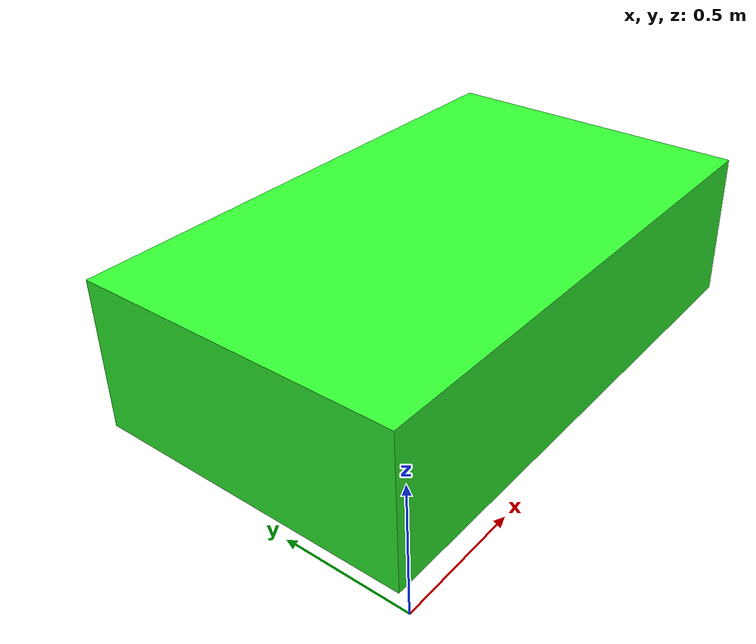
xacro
<?xml version="1.0"?>
<robot xmlns:xacro="http://www.ros.org/wiki/xacro" >

    <!-- This first link called "world" is empty -->
    <link name="world"></link>

    <!-- A simple fixed joint from our empty world link, to our base. -->
    <!-- The base origin is offset from the world origin. -->
    <joint name="base_joint" type="fixed">
        <origin xyz="1.5 1.0 0" rpy="0 0 0"/>
        <parent link="world"/>
        <child link="base_link"/>
    </joint>

    <link name="base_link">
        <visual>
            <origin xyz="0 0 0.05" rpy="0 0 0"/>
            <geometry>
                <box size="2.5 1.5 0.7" />
            </geometry>
            <material name="green">
                <color rgba="0.2 1 0.2 1"/>
            </material>
        </visual>
    </link>

    <joint name="base_footprint_joint" type="fixed">
        <parent link="base_link"/>
        <child link="base_footprint"/>
        <origin xyz="0 0 0" rpy="0 0 0"/>
    </joint>

    <link name="base_footprint">
    </link>
    </robot>
